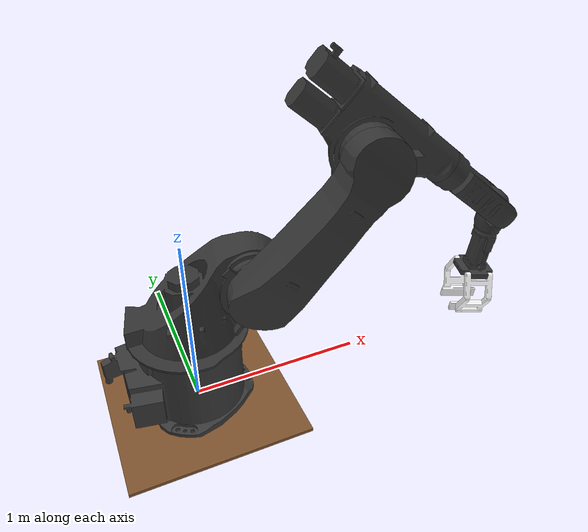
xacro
<?xml version="1.0"?>
<robot name="kr60" xmlns:xacro="http://ros.org/wiki/xacro">

    <!-- Defining the colors used in this robot -->
    <material name="Black">
        <color rgba="0 0 0 1"/>
    </material>

    <material name="White">
        <color rgba="1 1 1 1"/>
    </material>

    <material name="Blue">
        <color rgba="0 0 1 1"/>
    </material>

    <material name="Red">
        <color rgba="1 0 0 1"/>
    </material>

    <!-- Inertial matrix -->
    <xacro:macro name="inertial_matrix" params="mass">
        <inertial>
            <mass value="${mass}" />
            <inertia ixx="1.0" ixy="0.0" ixz="0.0" iyy="0.5" iyz="0.0" izz="1.0" />
        </inertial>
    </xacro:macro>

  <!-- ///////////////////////////////////////   bottom_joint   ////////////////////////////////////////// -->
   <joint name="dummy_joint" type="fixed">
     <origin xyz="0 0 0" rpy="0 0 0" />
     <parent link="dummy"/>
     <child link="base_link"/>
   </joint>
    <link name="dummy">
        <visual>
              <origin xyz=" 0 0 -0.02"  rpy="0 0 0"/>
                  <geometry>
                       <box size="1 1 0.02" />
                  </geometry>
              <material name="Brown" />
        </visual>
        <collision>
            <origin xyz=" 0 0 -0.02"  rpy="0 0 0"/>
            <geometry>
                <box size="1 1 0.02" />
            </geometry>
        </collision>
        <xacro:inertial_matrix mass="500"/>
    </link>

  <!-- /////////////////////////////////////   BASE LINK    ////////////////////////////////////////////// -->
  <link
    name="base_link">
    <inertial>
      <origin
        xyz="-0.0435912921701559 0.000713255348429254 0.235869111604986"
        rpy="0 0 0" />
      <mass
        value="131.03709830541" />
      <inertia
        ixx="4.89785584702139"
        ixy="0.0374706691148856"
        ixz="-0.212225957715894"
        iyy="6.14888362749998"
        iyz="-0.000661186598210806"
        izz="6.05287659150192" />
    </inertial>
    <visual>
      <origin
        xyz="0 0 0"
        rpy="0 0 0" />
      <geometry>
        <mesh
          filename="package://kr60/meshes/base_link.STL" />
      </geometry>
      <material
        name="">
        <color
          rgba="0.223529411764706 0.223529411764706 0.223529411764706 1" />
      </material>
    </visual>
    <collision>
      <origin
        xyz="0 0 0"
        rpy="0 0 0" />
      <geometry>
        <mesh
          filename="package://kr60/meshes/base_link.STL" />
      </geometry>
    </collision>
  </link>

  <link
    name="link1">
    <inertial>
      <origin
        xyz="0.140797971765356 -0.0164096960535733 0.187359043807774"
        rpy="0 0 0" />
      <mass
        value="82.8920172367664" />
      <inertia
        ixx="2.45467046863107"
        ixy="0.256865903550409"
        ixz="-1.16906897181984"
        iyy="4.32241124955131"
        iyz="0.176354317999072"
        izz="4.14782926078883" />
    </inertial>
    <visual>
      <origin
        xyz="0 0 0"
        rpy="0 0 0" />
      <geometry>
        <mesh
          filename="package://kr60/meshes/link1.STL" />
      </geometry>
      <material
        name="">
        <color
          rgba="0.2 0.2 0.2 1" />
      </material>
    </visual>
    <collision>
      <origin
        xyz="0 0 0"
        rpy="0 0 0" />
      <geometry>
        <mesh
          filename="package://kr60/meshes/link1.STL" />
      </geometry>
    </collision>
  </link>
  <joint
    name="joint1"
    type="revolute">
    <origin
      xyz="0.00035187 -4.2629E-05 0.49797"
      rpy="0 0 0" />
    <parent
      link="base_link" />
    <child
      link="link1" />
    <axis
      xyz="0 0 -1" />
    <limit
      lower="-3.14"
      upper="3.14"
      effort="300"
      velocity="1" />
    <dynamics damping="50.0" friction="0.0"/>
  </joint>

  <link
    name="link2">
    <inertial>
      <origin
        xyz="0.251956440024243 0.31201537254992 0.101340677761361"
        rpy="0 0 0" />
      <mass
        value="54.5098631728848" />
      <inertia
        ixx="3.37106903827733"
        ixy="-2.31897616562626"
        ixz="-0.0123248243600918"
        iyy="2.37820274493385"
        iyz="-0.0168099695812892"
        izz="5.37880440302274" />
    </inertial>
    <visual>
      <origin
        xyz="0 0 0"
        rpy="0 0 0" />
      <geometry>
        <mesh
          filename="package://kr60/meshes/link2.STL" />
      </geometry>
      <material
        name="">
        <color
          rgba="0.2 0.2 0.2 1" />
      </material>
    </visual>
    <collision>
      <origin
        xyz="0 0 0"
        rpy="0 0 0" />
      <geometry>
        <mesh
          filename="package://kr60/meshes/link2.STL" />
      </geometry>
    </collision>
  </link>
  <joint
    name="joint2"
    type="revolute">
    <origin
      xyz="0.30771 -0.22264 0.31103"
      rpy="1.5708 0 -0.22752" />
    <parent
      link="link1" />
    <child
      link="link2" />
    <axis
      xyz="0 0 -1" />
    <limit
      lower="-1.2"
      upper="1.4"
      effort="300"
      velocity="1" />
    <dynamics damping="20.0" friction="0.0"/>
  </joint>

  <link
    name="link3">
    <inertial>
      <origin
        xyz="0.0264574349222555 0.0622817405350231 -0.184769381740328"
        rpy="0 0 0" />
      <mass
        value="52.8139839675299" />
      <inertia
        ixx="1.44583618573615"
        ixy="0.675569358504738"
        ixz="-0.08105662717627"
        iyy="1.74771111138366"
        iyz="0.138955152142587"
        izz="2.35512831766369" />
    </inertial>
    <visual>
      <origin
        xyz="0 0 0"
        rpy="0 0 0" />
      <geometry>
        <mesh
          filename="package://kr60/meshes/link3.STL" />
      </geometry>
      <material
        name="">
        <color
          rgba="0.2 0.2 0.2 1" />
      </material>
    </visual>
    <collision>
      <origin
        xyz="0 0 0"
        rpy="0 0 0" />
      <geometry>
        <mesh
          filename="package://kr60/meshes/link3.STL" />
      </geometry>
    </collision>
  </link>
  <joint
    name="joint3"
    type="revolute">
    <origin
      xyz="0.53484 0.66064 0.017"
      rpy="0 0 0" />
    <parent
      link="link2" />
    <child
      link="link3" />
    <axis
      xyz="0 0 -1" />
    <limit
      lower="-4"
      upper="1.1"
      effort="300"
      velocity="1" />
    <dynamics damping="10.0" friction="0.0"/>
  </joint>

  <link
    name="link4">
    <inertial>
      <origin
        xyz="-0.00407295592284429 0.0114233456063895 0.191771095925468"
        rpy="0 0 0" />
      <mass
        value="9.33484403440081" />
      <inertia
        ixx="0.173337740682456"
        ixy="0.00766249996810709"
        ixz="0.00211297471780549"
        iyy="0.155598279375636"
        iyz="-0.00570657719860746"
        izz="0.0550237588439791" />
    </inertial>
    <visual>
      <origin
        xyz="0 0 0"
        rpy="0 0 0" />
      <geometry>
        <mesh
          filename="package://kr60/meshes/link4.STL" />
      </geometry>
      <material
        name="">
        <color
          rgba="0.2 0.2 0.2 1" />
      </material>
    </visual>
    <collision>
      <origin
        xyz="0 0 0"
        rpy="0 0 0" />
      <geometry>
        <mesh
          filename="package://kr60/meshes/link4.STL" />
      </geometry>
    </collision>
  </link>
  <joint
    name="joint4"
    type="revolute">
    <origin
      xyz="0.40937 -0.14672 -0.16457"
      rpy="1.5708 0.35122 0.88684" />
    <parent
      link="link3" />
    <child
      link="link4" />
    <axis
      xyz="0 0 -1" />
    <limit
      lower="-3.14"
      upper="3.14"
      effort="300"
      velocity="1" />
    <dynamics damping="10.0" friction="0.0"/>
  </joint>

  <link
    name="link5">
    <inertial>
      <origin
        xyz="-0.00305829815751446 -0.0262624932024078 -0.0855135194075107"
        rpy="0 0 0" />
      <mass
        value="3.88136296388639" />
      <inertia
        ixx="0.018435030823998"
        ixy="-0.000643999611295686"
        ixz="0.000225940311804447"
        iyy="0.0129804584036509"
        iyz="0.00194018831589403"
        izz="0.0166999744136098" />
    </inertial>
    <visual>
      <origin
        xyz="0 0 0"
        rpy="0 0 0" />
      <geometry>
        <mesh
          filename="package://kr60/meshes/link5.STL" />
      </geometry>
      <material
        name="">
        <color
          rgba="0.2 0.2 0.2 1" />
      </material>
    </visual>
    <collision>
      <origin
        xyz="0 0 0"
        rpy="0 0 0" />
      <geometry>
        <mesh
          filename="package://kr60/meshes/link5.STL" />
      </geometry>
    </collision>
  </link>
  <joint
    name="joint5"
    type="revolute">
    <origin
      xyz="-0.023643 0.06437 0.41596"
      rpy="-1.5708 -0.88729 0.35371" />
    <parent
      link="link4" />
    <child
      link="link5" />
    <axis
      xyz="0 0 -1" />
    <limit
      lower="-3.2"
      upper="1.52"
      effort="300"
      velocity="1" />
    <dynamics damping="5.0" friction="0.0"/>
  </joint>

  <link
    name="link6">
    <inertial>
      <origin
        xyz="-0.000266811986394 0.0022051066231592 0.159155225523868"
        rpy="0 0 0" />
      <mass
        value="2.49283147388058" />
      <inertia
        ixx="0.0228945331943247"
        ixy="6.35070513466885E-05"
        ixz="-3.49749616928972E-05"
        iyy="0.0225138449320645"
        iyz="0.000268449006240413"
        izz="0.0064716945834193" />
    </inertial>
    <visual>
      <origin
        xyz="0 0 0"
        rpy="0 0 0" />
      <geometry>
        <mesh
          filename="package://kr60/meshes/link6.STL" />
      </geometry>
      <material
        name="">
        <color
          rgba="0.223529411764706 0.223529411764706 0.223529411764706 1" />
      </material>
    </visual>
    <collision>
      <origin
        xyz="0 0 0"
        rpy="0 0 0" />
      <geometry>
        <mesh
          filename="package://kr60/meshes/link6.STL" />
      </geometry>
    </collision>
  </link>
  <joint
    name="joint6"
    type="revolute">
    <origin
      xyz="-0.014573 -0.12469 -0.068374"
      rpy="1.5708 0.23058 -0.11592" />
    <parent
      link="link5" />
    <child
      link="link6" />
    <axis
      xyz="0 0 -1" />
    <limit
      lower="-3.14"
      upper="3.14"
      effort="300"
      velocity="1" />
    <dynamics damping="1.0" friction="0.0"/>
  </joint>
  <!-- //////////////////////////////////////   finger   ////////////////////////////////////////////// -->

  <link
    name="finger_link1">
    <inertial>
      <origin
        xyz="-0.0749733532255245 0.130628735923085 -0.074999999999946"
        rpy="0 0 0" />
      <mass
        value="0.893519309367383" />
      <inertia
        ixx="0.0073937480635528"
        ixy="0.00124957233576088"
        ixz="3.13158244995282E-16"
        iyy="0.00326091528208565"
        iyz="-4.25684877972121E-16"
        izz="0.00565771627211372" />
    </inertial>
    <visual>
      <origin
        xyz="0 0 0"
        rpy="0 0 0" />
      <geometry>
        <mesh
          filename="package://kr60/meshes/finger_link1.STL" />
      </geometry>
      <material
        name="">
        <color
          rgba="1 1 1 1" />
      </material>
    </visual>
    <collision>
      <origin
        xyz="0 0 0"
        rpy="0 0 0" />
      <geometry>
        <mesh
          filename="package://kr60/meshes/finger_link1.STL" />
      </geometry>
    </collision>
  </link>
  <joint
    name="finger_joint1"
    type="revolute">
    <origin
      xyz="-0.093833 0.056587 0.2565"
      rpy="1.5708 0.39611 -1.2963" />
    <parent
      link="link6" />
    <child
      link="finger_link1" />
    <axis
      xyz="0 0 -1" />
    <limit
      lower="-1"
      upper="0.2"
      effort="300"
      velocity="1" />
    <dynamics damping="1.0" friction="0.0"/>
  </joint>

  <link
    name="finger_link2">
    <inertial>
      <origin
        xyz="-0.0434409829659067 0.144196411218408 -0.0750000000000308"
        rpy="0 0 0" />
      <mass
        value="0.893519309367395" />
      <inertia
        ixx="0.00645658292905761"
        ixy="0.00213264017844388"
        ixz="-9.93129189996722E-17"
        iyy="0.00419586853440302"
        iyz="5.19170210294684E-16"
        izz="0.00565550438993584" />
    </inertial>
    <visual>
      <origin
        xyz="0 0 0"
        rpy="0 0 0" />
      <geometry>
        <mesh
          filename="package://kr60/meshes/finger_link2.STL" />
      </geometry>
      <material
        name="">
        <color
          rgba="1 1 1 1" />
      </material>
    </visual>
    <collision>
      <origin
        xyz="0 0 0"
        rpy="0 0 0" />
      <geometry>
        <mesh
          filename="package://kr60/meshes/finger_link2.STL" />
      </geometry>
    </collision>
  </link>
  <joint
    name="finger_joint2"
    type="revolute">
    <origin
      xyz="-0.050462 -0.097423 0.2565"
      rpy="1.5708 0.39611 -1.2963" />
    <parent
      link="link6" />
    <child
      link="finger_link2" />
    <axis
      xyz="0 0 1" />
    <limit
      lower="-1"
      upper="0.2"
      effort="300"
      velocity="1" />
    <dynamics damping="1.0" friction="0.0"/>
  </joint>

    <!-- Grasping frame -->
    <link name="finger_frame"/>
    <joint name="finger_frame_joint" type="fixed">
      <parent link="link6"/>
      <child link="finger_frame"/>
      <origin xyz="0.08 0 0" rpy="0 0 0"/>
    </joint>

    <!-- /////////////////////////////////   Gazebo   ////////////////////////////////////// -->
    <!-- Transmissions for ROS Control -->
    <xacro:macro name="transmission_block" params="joint_name">
        <transmission name="tran1">
            <type>transmission_interface/SimpleTransmission</type>
            <joint name="${joint_name}">
                <hardwareInterface>hardware_interface/PositionJointInterface</hardwareInterface>
            </joint>
            <actuator name="motor1">
                <hardwareInterface>hardware_interface/PositionJointInterface</hardwareInterface>
                <mechanicalReduction>1</mechanicalReduction>
            </actuator>
        </transmission>
    </xacro:macro>

    <xacro:transmission_block joint_name="joint1"/>
    <xacro:transmission_block joint_name="joint2"/>
    <xacro:transmission_block joint_name="joint3"/>
    <xacro:transmission_block joint_name="joint4"/>
    <xacro:transmission_block joint_name="joint5"/>
    <xacro:transmission_block joint_name="joint6"/>
    <xacro:transmission_block joint_name="finger_joint1"/>
    <xacro:transmission_block joint_name="finger_joint2"/>

    <!-- ros_control plugin -->
    <gazebo>
        <plugin name="gazebo_ros_control" filename="libgazebo_ros_control.so">
            <robotNamespace>/kr60</robotNamespace>
            <robotSimType>gazebo_ros_control/DefaultRobotHWSim</robotSimType>
            <legacyModeNS>true</legacyModeNS>
        </plugin>
    </gazebo>

</robot>
